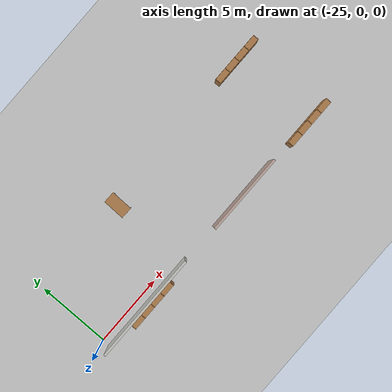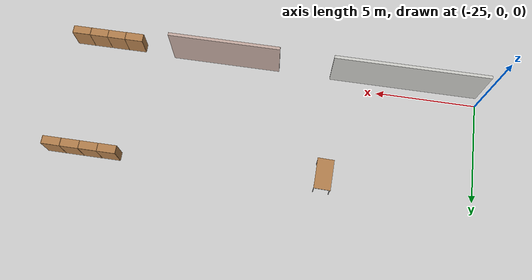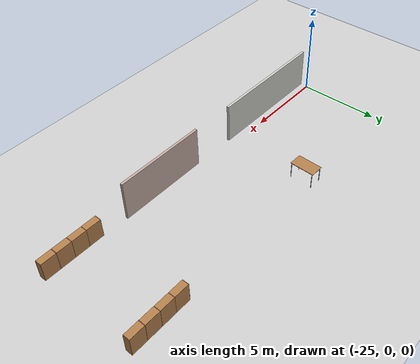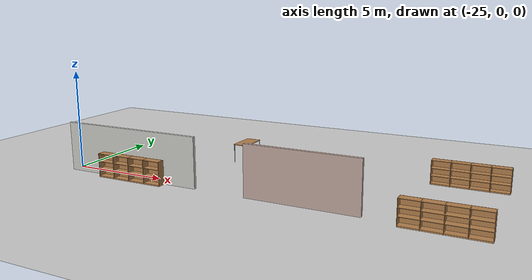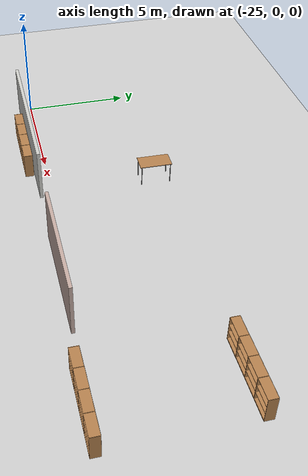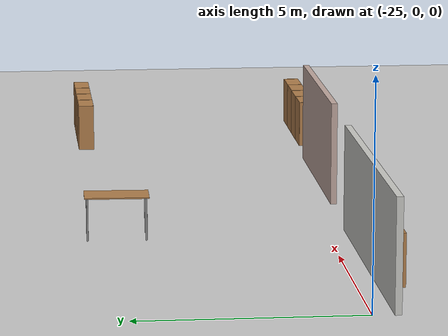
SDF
<sdf version="1.6">
 <world name="default">
  <model name="ground_plane">
   <static>1</static>
   <link name="link">
    <collision name="collision">
     <geometry><plane><normal>0 0 1</normal><size>100 100</size></plane></geometry>
     <surface><friction><ode><mu>100</mu><mu2>50</mu2></ode></friction></surface>
    </collision>
    <visual name="visual">
     <cast_shadows>0</cast_shadows>
     <geometry><plane><normal>0 0 1</normal><size>100 100</size></plane></geometry>
     <material>
      <script><uri>file://media/materials/scripts/gazebo.material</uri><name>Gazebo/Grey</name></script>
     </material>
    </visual>
   </link>
  </model>
  <model name="floor">
   <link name="Wall_211">
    <pose>-13.4181 0.683546 0 0 -0 0</pose>
    <visual name="Wall_211_Visual">
     <pose>0 0 1.25 0 -0 0</pose>
     <geometry><box><size>5.5 0.15 2.5</size></box></geometry>
     <material>
      <script><uri>file://media/materials/scripts/gazebo.material</uri><name>Gazebo/Grey</name></script>
      <ambient>0.760784 0.662745 0.627451 1</ambient>
     </material>
     <meta><layer>0</layer></meta>
    </visual>
    <collision name="Wall_211_Collision">
     <pose>0 0 1.25 0 -0 0</pose>
     <geometry><box><size>5.5 0.15 2.5</size></box></geometry>
     <surface>
      <friction>
       <ode><mu>1</mu><mu2>1</mu2><fdir1>0 0 0</fdir1><slip1>0</slip1><slip2>0</slip2></ode>
       <torsional>
        <coefficient>1</coefficient>
        <patch_radius>0</patch_radius>
        <surface_radius>0</surface_radius>
        <use_patch_radius>1</use_patch_radius>
        <ode><slip>0</slip></ode>
       </torsional>
      </friction>
      <bounce><restitution_coefficient>0</restitution_coefficient><threshold>1e+06</threshold></bounce>
      <contact>
       <collide_without_contact>0</collide_without_contact>
       <collide_without_contact_bitmask>1</collide_without_contact_bitmask>
       <collide_bitmask>1</collide_bitmask>
       <ode>
        <soft_cfm>0</soft_cfm>
        <soft_erp>0.2</soft_erp>
        <kp>1e+13</kp>
        <kd>1</kd>
        <max_vel>0.01</max_vel>
        <min_depth>0</min_depth>
       </ode>
       <bullet>
        <split_impulse>1</split_impulse>
        <split_impulse_penetration_threshold>-0.01</split_impulse_penetration_threshold>
        <soft_cfm>0</soft_cfm>
        <soft_erp>0.2</soft_erp>
        <kp>1e+13</kp>
        <kd>1</kd>
       </bullet>
      </contact>
     </surface>
    </collision>
   </link>
   <link name="Wall_35">
    <pose>-22.5589 0.737728 0 0 -0 0</pose>
    <visual name="Wall_35_Visual">
     <pose>0 0 1.25 0 -0 0</pose>
     <geometry><box><size>7.5 0.15 2.5</size></box></geometry>
     <material>
      <script><uri>file://media/materials/scripts/gazebo.material</uri><name>Gazebo/CeilingTiled</name></script>
      <ambient>0.760784 0.662745 0.627451 1</ambient>
     </material>
     <meta><layer>0</layer></meta>
    </visual>
    <collision name="Wall_35_Collision">
     <pose>0 0 1.25 0 -0 0</pose>
     <geometry><box><size>7.5 0.15 2.5</size></box></geometry>
     <surface>
      <friction>
       <ode><mu>1</mu><mu2>1</mu2><fdir1>0 0 0</fdir1><slip1>0</slip1><slip2>0</slip2></ode>
       <torsional>
        <coefficient>1</coefficient>
        <patch_radius>0</patch_radius>
        <surface_radius>0</surface_radius>
        <use_patch_radius>1</use_patch_radius>
        <ode><slip>0</slip></ode>
       </torsional>
      </friction>
      <bounce><restitution_coefficient>0</restitution_coefficient><threshold>1e+06</threshold></bounce>
      <contact>
       <collide_without_contact>0</collide_without_contact>
       <collide_without_contact_bitmask>1</collide_without_contact_bitmask>
       <collide_bitmask>1</collide_bitmask>
       <ode>
        <soft_cfm>0</soft_cfm>
        <soft_erp>0.2</soft_erp>
        <kp>1e+13</kp>
        <kd>1</kd>
        <max_vel>0.01</max_vel>
        <min_depth>0</min_depth>
       </ode>
       <bullet>
        <split_impulse>1</split_impulse>
        <split_impulse_penetration_threshold>-0.01</split_impulse_penetration_threshold>
        <soft_cfm>0</soft_cfm>
        <soft_erp>0.2</soft_erp>
        <kp>1e+13</kp>
        <kd>1</kd>
       </bullet>
      </contact>
     </surface>
    </collision>
   </link>
   <model name="Bookself-4_0_clone">
    <model name="Bookself-3">
     <model name="bookshelf_0">
      <static>1</static>
      <link name="link">
       <inertial><mass>1</mass></inertial>
       <collision name="back">
        <pose>0 0.005 0.6 0 -0 0</pose>
        <geometry><box><size>0.9 0.01 1.2</size></box></geometry>
       </collision>
       <visual name="visual1">
        <pose>0 0.005 0.6 0 -0 0</pose>
        <geometry><box><size>0.9 0.01 1.2</size></box></geometry>
        <material>
         <script><uri>file://media/materials/scripts/gazebo.material</uri><name>Gazebo/Wood</name></script>
        </material>
       </visual>
       <collision name="left_side">
        <pose>0.45 -0.195 0.6 0 -0 0</pose>
        <geometry><box><size>0.02 0.4 1.2</size></box></geometry>
       </collision>
       <visual name="visual2">
        <pose>0.45 -0.195 0.6 0 -0 0</pose>
        <geometry><box><size>0.02 0.4 1.2</size></box></geometry>
        <material>
         <script><uri>file://media/materials/scripts/gazebo.material</uri><name>Gazebo/Wood</name></script>
        </material>
       </visual>
       <collision name="right_side">
        <pose>-0.45 -0.195 0.6 0 -0 0</pose>
        <geometry><box><size>0.02 0.4 1.2</size></box></geometry>
       </collision>
       <visual name="visual3">
        <pose>-0.45 -0.195 0.6 0 -0 0</pose>
        <geometry><box><size>0.02 0.4 1.2</size></box></geometry>
        <material>
         <script><uri>file://media/materials/scripts/gazebo.material</uri><name>Gazebo/Wood</name></script>
        </material>
       </visual>
       <collision name="bottom">
        <pose>0 -0.195 0.03 0 -0 0</pose>
        <geometry><box><size>0.88 0.4 0.06</size></box></geometry>
       </collision>
       <visual name="visual4">
        <pose>0 -0.195 0.03 0 -0 0</pose>
        <geometry><box><size>0.88 0.4 0.06</size></box></geometry>
        <material>
         <script><uri>file://media/materials/scripts/gazebo.material</uri><name>Gazebo/Wood</name></script>
        </material>
       </visual>
       <collision name="top">
        <pose>0 -0.195 1.19 0 -0 0</pose>
        <geometry><box><size>0.88 0.4 0.02</size></box></geometry>
       </collision>
       <visual name="visual5">
        <pose>0 -0.195 1.19 0 -0 0</pose>
        <geometry><box><size>0.88 0.4 0.02</size></box></geometry>
        <material>
         <script><uri>file://media/materials/scripts/gazebo.material</uri><name>Gazebo/Wood</name></script>
        </material>
       </visual>
       <collision name="low_shelf">
        <pose>0 -0.195 0.43 0 -0 0</pose>
        <geometry><box><size>0.88 0.4 0.02</size></box></geometry>
       </collision>
       <visual name="visual6">
        <pose>0 -0.195 0.43 0 -0 0</pose>
        <geometry><box><size>0.88 0.4 0.02</size></box></geometry>
        <material>
         <script><uri>file://media/materials/scripts/gazebo.material</uri><name>Gazebo/Wood</name></script>
        </material>
       </visual>
       <collision name="high_shelf">
        <pose>0 -0.195 0.8 0 -0 0</pose>
        <geometry><box><size>0.88 0.4 0.02</size></box></geometry>
       </collision>
       <visual name="visual7">
        <pose>0 -0.195 0.8 0 -0 0</pose>
        <geometry><box><size>0.88 0.4 0.02</size></box></geometry>
        <material>
         <script><uri>file://media/materials/scripts/gazebo.material</uri><name>Gazebo/Wood</name></script>
        </material>
       </visual>
      </link>
      <pose>-0.903039 0 0 0 -0 0</pose>
     </model>
     <model name="bookshelf_1">
      <static>1</static>
      <link name="link">
       <inertial><mass>1</mass></inertial>
       <collision name="back">
        <pose>0 0.005 0.6 0 -0 0</pose>
        <geometry><box><size>0.9 0.01 1.2</size></box></geometry>
       </collision>
       <visual name="visual1">
        <pose>0 0.005 0.6 0 -0 0</pose>
        <geometry><box><size>0.9 0.01 1.2</size></box></geometry>
        <material>
         <script><uri>file://media/materials/scripts/gazebo.material</uri><name>Gazebo/Wood</name></script>
        </material>
       </visual>
       <collision name="left_side">
        <pose>0.45 -0.195 0.6 0 -0 0</pose>
        <geometry><box><size>0.02 0.4 1.2</size></box></geometry>
       </collision>
       <visual name="visual2">
        <pose>0.45 -0.195 0.6 0 -0 0</pose>
        <geometry><box><size>0.02 0.4 1.2</size></box></geometry>
        <material>
         <script><uri>file://media/materials/scripts/gazebo.material</uri><name>Gazebo/Wood</name></script>
        </material>
       </visual>
       <collision name="right_side">
        <pose>-0.45 -0.195 0.6 0 -0 0</pose>
        <geometry><box><size>0.02 0.4 1.2</size></box></geometry>
       </collision>
       <visual name="visual3">
        <pose>-0.45 -0.195 0.6 0 -0 0</pose>
        <geometry><box><size>0.02 0.4 1.2</size></box></geometry>
        <material>
         <script><uri>file://media/materials/scripts/gazebo.material</uri><name>Gazebo/Wood</name></script>
        </material>
       </visual>
       <collision name="bottom">
        <pose>0 -0.195 0.03 0 -0 0</pose>
        <geometry><box><size>0.88 0.4 0.06</size></box></geometry>
       </collision>
       <visual name="visual4">
        <pose>0 -0.195 0.03 0 -0 0</pose>
        <geometry><box><size>0.88 0.4 0.06</size></box></geometry>
        <material>
         <script><uri>file://media/materials/scripts/gazebo.material</uri><name>Gazebo/Wood</name></script>
        </material>
       </visual>
       <collision name="top">
        <pose>0 -0.195 1.19 0 -0 0</pose>
        <geometry><box><size>0.88 0.4 0.02</size></box></geometry>
       </collision>
       <visual name="visual5">
        <pose>0 -0.195 1.19 0 -0 0</pose>
        <geometry><box><size>0.88 0.4 0.02</size></box></geometry>
        <material>
         <script><uri>file://media/materials/scripts/gazebo.material</uri><name>Gazebo/Wood</name></script>
        </material>
       </visual>
       <collision name="low_shelf">
        <pose>0 -0.195 0.43 0 -0 0</pose>
        <geometry><box><size>0.88 0.4 0.02</size></box></geometry>
       </collision>
       <visual name="visual6">
        <pose>0 -0.195 0.43 0 -0 0</pose>
        <geometry><box><size>0.88 0.4 0.02</size></box></geometry>
        <material>
         <script><uri>file://media/materials/scripts/gazebo.material</uri><name>Gazebo/Wood</name></script>
        </material>
       </visual>
       <collision name="high_shelf">
        <pose>0 -0.195 0.8 0 -0 0</pose>
        <geometry><box><size>0.88 0.4 0.02</size></box></geometry>
       </collision>
       <visual name="visual7">
        <pose>0 -0.195 0.8 0 -0 0</pose>
        <geometry><box><size>0.88 0.4 0.02</size></box></geometry>
        <material>
         <script><uri>file://media/materials/scripts/gazebo.material</uri><name>Gazebo/Wood</name></script>
        </material>
       </visual>
      </link>
      <pose>0.000535 0 0 0 -0 0</pose>
     </model>
     <model name="bookshelf_1_clone">
      <static>1</static>
      <link name="link">
       <inertial><mass>1</mass></inertial>
       <collision name="back">
        <pose>0 0.005 0.6 0 -0 0</pose>
        <geometry><box><size>0.9 0.01 1.2</size></box></geometry>
       </collision>
       <visual name="visual1">
        <pose>0 0.005 0.6 0 -0 0</pose>
        <geometry><box><size>0.9 0.01 1.2</size></box></geometry>
        <material>
         <script><uri>file://media/materials/scripts/gazebo.material</uri><name>Gazebo/Wood</name></script>
        </material>
       </visual>
       <collision name="left_side">
        <pose>0.45 -0.195 0.6 0 -0 0</pose>
        <geometry><box><size>0.02 0.4 1.2</size></box></geometry>
       </collision>
       <visual name="visual2">
        <pose>0.45 -0.195 0.6 0 -0 0</pose>
        <geometry><box><size>0.02 0.4 1.2</size></box></geometry>
        <material>
         <script><uri>file://media/materials/scripts/gazebo.material</uri><name>Gazebo/Wood</name></script>
        </material>
       </visual>
       <collision name="right_side">
        <pose>-0.45 -0.195 0.6 0 -0 0</pose>
        <geometry><box><size>0.02 0.4 1.2</size></box></geometry>
       </collision>
       <visual name="visual3">
        <pose>-0.45 -0.195 0.6 0 -0 0</pose>
        <geometry><box><size>0.02 0.4 1.2</size></box></geometry>
        <material>
         <script><uri>file://media/materials/scripts/gazebo.material</uri><name>Gazebo/Wood</name></script>
        </material>
       </visual>
       <collision name="bottom">
        <pose>0 -0.195 0.03 0 -0 0</pose>
        <geometry><box><size>0.88 0.4 0.06</size></box></geometry>
       </collision>
       <visual name="visual4">
        <pose>0 -0.195 0.03 0 -0 0</pose>
        <geometry><box><size>0.88 0.4 0.06</size></box></geometry>
        <material>
         <script><uri>file://media/materials/scripts/gazebo.material</uri><name>Gazebo/Wood</name></script>
        </material>
       </visual>
       <collision name="top">
        <pose>0 -0.195 1.19 0 -0 0</pose>
        <geometry><box><size>0.88 0.4 0.02</size></box></geometry>
       </collision>
       <visual name="visual5">
        <pose>0 -0.195 1.19 0 -0 0</pose>
        <geometry><box><size>0.88 0.4 0.02</size></box></geometry>
        <material>
         <script><uri>file://media/materials/scripts/gazebo.material</uri><name>Gazebo/Wood</name></script>
        </material>
       </visual>
       <collision name="low_shelf">
        <pose>0 -0.195 0.43 0 -0 0</pose>
        <geometry><box><size>0.88 0.4 0.02</size></box></geometry>
       </collision>
       <visual name="visual6">
        <pose>0 -0.195 0.43 0 -0 0</pose>
        <geometry><box><size>0.88 0.4 0.02</size></box></geometry>
        <material>
         <script><uri>file://media/materials/scripts/gazebo.material</uri><name>Gazebo/Wood</name></script>
        </material>
       </visual>
       <collision name="high_shelf">
        <pose>0 -0.195 0.8 0 -0 0</pose>
        <geometry><box><size>0.88 0.4 0.02</size></box></geometry>
       </collision>
       <visual name="visual7">
        <pose>0 -0.195 0.8 0 -0 0</pose>
        <geometry><box><size>0.88 0.4 0.02</size></box></geometry>
        <material>
         <script><uri>file://media/materials/scripts/gazebo.material</uri><name>Gazebo/Wood</name></script>
        </material>
       </visual>
      </link>
      <pose>0.902502 0 0 0 -0 0</pose>
     </model>
     <static>1</static>
     <pose>-0.906894 3e-05 0 0 -0 0</pose>
    </model>
    <model name="bookshelf">
     <static>1</static>
     <link name="link">
      <inertial><mass>1</mass></inertial>
      <collision name="back">
       <pose>0 0.005 0.6 0 -0 0</pose>
       <geometry><box><size>0.9 0.01 1.2</size></box></geometry>
      </collision>
      <visual name="visual1">
       <pose>0 0.005 0.6 0 -0 0</pose>
       <geometry><box><size>0.9 0.01 1.2</size></box></geometry>
       <material>
        <script><uri>file://media/materials/scripts/gazebo.material</uri><name>Gazebo/Wood</name></script>
       </material>
      </visual>
      <collision name="left_side">
       <pose>0.45 -0.195 0.6 0 -0 0</pose>
       <geometry><box><size>0.02 0.4 1.2</size></box></geometry>
      </collision>
      <visual name="visual2">
       <pose>0.45 -0.195 0.6 0 -0 0</pose>
       <geometry><box><size>0.02 0.4 1.2</size></box></geometry>
       <material>
        <script><uri>file://media/materials/scripts/gazebo.material</uri><name>Gazebo/Wood</name></script>
       </material>
      </visual>
      <collision name="right_side">
       <pose>-0.45 -0.195 0.6 0 -0 0</pose>
       <geometry><box><size>0.02 0.4 1.2</size></box></geometry>
      </collision>
      <visual name="visual3">
       <pose>-0.45 -0.195 0.6 0 -0 0</pose>
       <geometry><box><size>0.02 0.4 1.2</size></box></geometry>
       <material>
        <script><uri>file://media/materials/scripts/gazebo.material</uri><name>Gazebo/Wood</name></script>
       </material>
      </visual>
      <collision name="bottom">
       <pose>0 -0.195 0.03 0 -0 0</pose>
       <geometry><box><size>0.88 0.4 0.06</size></box></geometry>
      </collision>
      <visual name="visual4">
       <pose>0 -0.195 0.03 0 -0 0</pose>
       <geometry><box><size>0.88 0.4 0.06</size></box></geometry>
       <material>
        <script><uri>file://media/materials/scripts/gazebo.material</uri><name>Gazebo/Wood</name></script>
       </material>
      </visual>
      <collision name="top">
       <pose>0 -0.195 1.19 0 -0 0</pose>
       <geometry><box><size>0.88 0.4 0.02</size></box></geometry>
      </collision>
      <visual name="visual5">
       <pose>0 -0.195 1.19 0 -0 0</pose>
       <geometry><box><size>0.88 0.4 0.02</size></box></geometry>
       <material>
        <script><uri>file://media/materials/scripts/gazebo.material</uri><name>Gazebo/Wood</name></script>
       </material>
      </visual>
      <collision name="low_shelf">
       <pose>0 -0.195 0.43 0 -0 0</pose>
       <geometry><box><size>0.88 0.4 0.02</size></box></geometry>
      </collision>
      <visual name="visual6">
       <pose>0 -0.195 0.43 0 -0 0</pose>
       <geometry><box><size>0.88 0.4 0.02</size></box></geometry>
       <material>
        <script><uri>file://media/materials/scripts/gazebo.material</uri><name>Gazebo/Wood</name></script>
       </material>
      </visual>
      <collision name="high_shelf">
       <pose>0 -0.195 0.8 0 -0 0</pose>
       <geometry><box><size>0.88 0.4 0.02</size></box></geometry>
      </collision>
      <visual name="visual7">
       <pose>0 -0.195 0.8 0 -0 0</pose>
       <geometry><box><size>0.88 0.4 0.02</size></box></geometry>
       <material>
        <script><uri>file://media/materials/scripts/gazebo.material</uri><name>Gazebo/Wood</name></script>
       </material>
      </visual>
     </link>
     <pose>0.906808 3e-05 0 0 -0 0</pose>
    </model>
    <static>0</static>
    <pose>-21.8804 0.620908 0 0 -0 0</pose>
   </model>
   <static>1</static>
   <pose>1.26361 -1.27025 0 0 -0 0</pose>
  </model>
  <model name="Bookshelf-4_clone_0">
   <model name="bookshelf">
    <static>1</static>
    <link name="link">
     <inertial><mass>1</mass></inertial>
     <collision name="back">
      <pose>0 0.005 0.6 0 -0 0</pose>
      <geometry><box><size>0.9 0.01 1.2</size></box></geometry>
     </collision>
     <visual name="visual1">
      <pose>0 0.005 0.6 0 -0 0</pose>
      <geometry><box><size>0.9 0.01 1.2</size></box></geometry>
      <material>
       <script><uri>file://media/materials/scripts/gazebo.material</uri><name>Gazebo/Wood</name></script>
      </material>
     </visual>
     <collision name="left_side">
      <pose>0.45 -0.195 0.6 0 -0 0</pose>
      <geometry><box><size>0.02 0.4 1.2</size></box></geometry>
     </collision>
     <visual name="visual2">
      <pose>0.45 -0.195 0.6 0 -0 0</pose>
      <geometry><box><size>0.02 0.4 1.2</size></box></geometry>
      <material>
       <script><uri>file://media/materials/scripts/gazebo.material</uri><name>Gazebo/Wood</name></script>
      </material>
     </visual>
     <collision name="right_side">
      <pose>-0.45 -0.195 0.6 0 -0 0</pose>
      <geometry><box><size>0.02 0.4 1.2</size></box></geometry>
     </collision>
     <visual name="visual3">
      <pose>-0.45 -0.195 0.6 0 -0 0</pose>
      <geometry><box><size>0.02 0.4 1.2</size></box></geometry>
      <material>
       <script><uri>file://media/materials/scripts/gazebo.material</uri><name>Gazebo/Wood</name></script>
      </material>
     </visual>
     <collision name="bottom">
      <pose>0 -0.195 0.03 0 -0 0</pose>
      <geometry><box><size>0.88 0.4 0.06</size></box></geometry>
     </collision>
     <visual name="visual4">
      <pose>0 -0.195 0.03 0 -0 0</pose>
      <geometry><box><size>0.88 0.4 0.06</size></box></geometry>
      <material>
       <script><uri>file://media/materials/scripts/gazebo.material</uri><name>Gazebo/Wood</name></script>
      </material>
     </visual>
     <collision name="top">
      <pose>0 -0.195 1.19 0 -0 0</pose>
      <geometry><box><size>0.88 0.4 0.02</size></box></geometry>
     </collision>
     <visual name="visual5">
      <pose>0 -0.195 1.19 0 -0 0</pose>
      <geometry><box><size>0.88 0.4 0.02</size></box></geometry>
      <material>
       <script><uri>file://media/materials/scripts/gazebo.material</uri><name>Gazebo/Wood</name></script>
      </material>
     </visual>
     <collision name="low_shelf">
      <pose>0 -0.195 0.43 0 -0 0</pose>
      <geometry><box><size>0.88 0.4 0.02</size></box></geometry>
     </collision>
     <visual name="visual6">
      <pose>0 -0.195 0.43 0 -0 0</pose>
      <geometry><box><size>0.88 0.4 0.02</size></box></geometry>
      <material>
       <script><uri>file://media/materials/scripts/gazebo.material</uri><name>Gazebo/Wood</name></script>
      </material>
     </visual>
     <collision name="high_shelf">
      <pose>0 -0.195 0.8 0 -0 0</pose>
      <geometry><box><size>0.88 0.4 0.02</size></box></geometry>
     </collision>
     <visual name="visual7">
      <pose>0 -0.195 0.8 0 -0 0</pose>
      <geometry><box><size>0.88 0.4 0.02</size></box></geometry>
      <material>
       <script><uri>file://media/materials/scripts/gazebo.material</uri><name>Gazebo/Wood</name></script>
      </material>
     </visual>
    </link>
    <pose>-1.35671 -0.002097 0 0 -0 0</pose>
   </model>
   <model name="bookshelf_0">
    <static>1</static>
    <link name="link">
     <inertial><mass>1</mass></inertial>
     <collision name="back">
      <pose>0 0.005 0.6 0 -0 0</pose>
      <geometry><box><size>0.9 0.01 1.2</size></box></geometry>
     </collision>
     <visual name="visual1">
      <pose>0 0.005 0.6 0 -0 0</pose>
      <geometry><box><size>0.9 0.01 1.2</size></box></geometry>
      <material>
       <script><uri>file://media/materials/scripts/gazebo.material</uri><name>Gazebo/Wood</name></script>
      </material>
     </visual>
     <collision name="left_side">
      <pose>0.45 -0.195 0.6 0 -0 0</pose>
      <geometry><box><size>0.02 0.4 1.2</size></box></geometry>
     </collision>
     <visual name="visual2">
      <pose>0.45 -0.195 0.6 0 -0 0</pose>
      <geometry><box><size>0.02 0.4 1.2</size></box></geometry>
      <material>
       <script><uri>file://media/materials/scripts/gazebo.material</uri><name>Gazebo/Wood</name></script>
      </material>
     </visual>
     <collision name="right_side">
      <pose>-0.45 -0.195 0.6 0 -0 0</pose>
      <geometry><box><size>0.02 0.4 1.2</size></box></geometry>
     </collision>
     <visual name="visual3">
      <pose>-0.45 -0.195 0.6 0 -0 0</pose>
      <geometry><box><size>0.02 0.4 1.2</size></box></geometry>
      <material>
       <script><uri>file://media/materials/scripts/gazebo.material</uri><name>Gazebo/Wood</name></script>
      </material>
     </visual>
     <collision name="bottom">
      <pose>0 -0.195 0.03 0 -0 0</pose>
      <geometry><box><size>0.88 0.4 0.06</size></box></geometry>
     </collision>
     <visual name="visual4">
      <pose>0 -0.195 0.03 0 -0 0</pose>
      <geometry><box><size>0.88 0.4 0.06</size></box></geometry>
      <material>
       <script><uri>file://media/materials/scripts/gazebo.material</uri><name>Gazebo/Wood</name></script>
      </material>
     </visual>
     <collision name="top">
      <pose>0 -0.195 1.19 0 -0 0</pose>
      <geometry><box><size>0.88 0.4 0.02</size></box></geometry>
     </collision>
     <visual name="visual5">
      <pose>0 -0.195 1.19 0 -0 0</pose>
      <geometry><box><size>0.88 0.4 0.02</size></box></geometry>
      <material>
       <script><uri>file://media/materials/scripts/gazebo.material</uri><name>Gazebo/Wood</name></script>
      </material>
     </visual>
     <collision name="low_shelf">
      <pose>0 -0.195 0.43 0 -0 0</pose>
      <geometry><box><size>0.88 0.4 0.02</size></box></geometry>
     </collision>
     <visual name="visual6">
      <pose>0 -0.195 0.43 0 -0 0</pose>
      <geometry><box><size>0.88 0.4 0.02</size></box></geometry>
      <material>
       <script><uri>file://media/materials/scripts/gazebo.material</uri><name>Gazebo/Wood</name></script>
      </material>
     </visual>
     <collision name="high_shelf">
      <pose>0 -0.195 0.8 0 -0 0</pose>
      <geometry><box><size>0.88 0.4 0.02</size></box></geometry>
     </collision>
     <visual name="visual7">
      <pose>0 -0.195 0.8 0 -0 0</pose>
      <geometry><box><size>0.88 0.4 0.02</size></box></geometry>
      <material>
       <script><uri>file://media/materials/scripts/gazebo.material</uri><name>Gazebo/Wood</name></script>
      </material>
     </visual>
    </link>
    <pose>-0.452974 0.001386 0 0 -0 0</pose>
   </model>
   <model name="bookshelf_1">
    <static>1</static>
    <link name="link">
     <inertial><mass>1</mass></inertial>
     <collision name="back">
      <pose>0 0.005 0.6 0 -0 0</pose>
      <geometry><box><size>0.9 0.01 1.2</size></box></geometry>
     </collision>
     <visual name="visual1">
      <pose>0 0.005 0.6 0 -0 0</pose>
      <geometry><box><size>0.9 0.01 1.2</size></box></geometry>
      <material>
       <script><uri>file://media/materials/scripts/gazebo.material</uri><name>Gazebo/Wood</name></script>
      </material>
     </visual>
     <collision name="left_side">
      <pose>0.45 -0.195 0.6 0 -0 0</pose>
      <geometry><box><size>0.02 0.4 1.2</size></box></geometry>
     </collision>
     <visual name="visual2">
      <pose>0.45 -0.195 0.6 0 -0 0</pose>
      <geometry><box><size>0.02 0.4 1.2</size></box></geometry>
      <material>
       <script><uri>file://media/materials/scripts/gazebo.material</uri><name>Gazebo/Wood</name></script>
      </material>
     </visual>
     <collision name="right_side">
      <pose>-0.45 -0.195 0.6 0 -0 0</pose>
      <geometry><box><size>0.02 0.4 1.2</size></box></geometry>
     </collision>
     <visual name="visual3">
      <pose>-0.45 -0.195 0.6 0 -0 0</pose>
      <geometry><box><size>0.02 0.4 1.2</size></box></geometry>
      <material>
       <script><uri>file://media/materials/scripts/gazebo.material</uri><name>Gazebo/Wood</name></script>
      </material>
     </visual>
     <collision name="bottom">
      <pose>0 -0.195 0.03 0 -0 0</pose>
      <geometry><box><size>0.88 0.4 0.06</size></box></geometry>
     </collision>
     <visual name="visual4">
      <pose>0 -0.195 0.03 0 -0 0</pose>
      <geometry><box><size>0.88 0.4 0.06</size></box></geometry>
      <material>
       <script><uri>file://media/materials/scripts/gazebo.material</uri><name>Gazebo/Wood</name></script>
      </material>
     </visual>
     <collision name="top">
      <pose>0 -0.195 1.19 0 -0 0</pose>
      <geometry><box><size>0.88 0.4 0.02</size></box></geometry>
     </collision>
     <visual name="visual5">
      <pose>0 -0.195 1.19 0 -0 0</pose>
      <geometry><box><size>0.88 0.4 0.02</size></box></geometry>
      <material>
       <script><uri>file://media/materials/scripts/gazebo.material</uri><name>Gazebo/Wood</name></script>
      </material>
     </visual>
     <collision name="low_shelf">
      <pose>0 -0.195 0.43 0 -0 0</pose>
      <geometry><box><size>0.88 0.4 0.02</size></box></geometry>
     </collision>
     <visual name="visual6">
      <pose>0 -0.195 0.43 0 -0 0</pose>
      <geometry><box><size>0.88 0.4 0.02</size></box></geometry>
      <material>
       <script><uri>file://media/materials/scripts/gazebo.material</uri><name>Gazebo/Wood</name></script>
      </material>
     </visual>
     <collision name="high_shelf">
      <pose>0 -0.195 0.8 0 -0 0</pose>
      <geometry><box><size>0.88 0.4 0.02</size></box></geometry>
     </collision>
     <visual name="visual7">
      <pose>0 -0.195 0.8 0 -0 0</pose>
      <geometry><box><size>0.88 0.4 0.02</size></box></geometry>
      <material>
       <script><uri>file://media/materials/scripts/gazebo.material</uri><name>Gazebo/Wood</name></script>
      </material>
     </visual>
    </link>
    <pose>0.450456 0.000733 0 0 -0 0</pose>
   </model>
   <model name="bookshelf_2">
    <static>1</static>
    <link name="link">
     <inertial><mass>1</mass></inertial>
     <collision name="back">
      <pose>0 0.005 0.6 0 -0 0</pose>
      <geometry><box><size>0.9 0.01 1.2</size></box></geometry>
     </collision>
     <visual name="visual1">
      <pose>0 0.005 0.6 0 -0 0</pose>
      <geometry><box><size>0.9 0.01 1.2</size></box></geometry>
      <material>
       <script><uri>file://media/materials/scripts/gazebo.material</uri><name>Gazebo/Wood</name></script>
      </material>
     </visual>
     <collision name="left_side">
      <pose>0.45 -0.195 0.6 0 -0 0</pose>
      <geometry><box><size>0.02 0.4 1.2</size></box></geometry>
     </collision>
     <visual name="visual2">
      <pose>0.45 -0.195 0.6 0 -0 0</pose>
      <geometry><box><size>0.02 0.4 1.2</size></box></geometry>
      <material>
       <script><uri>file://media/materials/scripts/gazebo.material</uri><name>Gazebo/Wood</name></script>
      </material>
     </visual>
     <collision name="right_side">
      <pose>-0.45 -0.195 0.6 0 -0 0</pose>
      <geometry><box><size>0.02 0.4 1.2</size></box></geometry>
     </collision>
     <visual name="visual3">
      <pose>-0.45 -0.195 0.6 0 -0 0</pose>
      <geometry><box><size>0.02 0.4 1.2</size></box></geometry>
      <material>
       <script><uri>file://media/materials/scripts/gazebo.material</uri><name>Gazebo/Wood</name></script>
      </material>
     </visual>
     <collision name="bottom">
      <pose>0 -0.195 0.03 0 -0 0</pose>
      <geometry><box><size>0.88 0.4 0.06</size></box></geometry>
     </collision>
     <visual name="visual4">
      <pose>0 -0.195 0.03 0 -0 0</pose>
      <geometry><box><size>0.88 0.4 0.06</size></box></geometry>
      <material>
       <script><uri>file://media/materials/scripts/gazebo.material</uri><name>Gazebo/Wood</name></script>
      </material>
     </visual>
     <collision name="top">
      <pose>0 -0.195 1.19 0 -0 0</pose>
      <geometry><box><size>0.88 0.4 0.02</size></box></geometry>
     </collision>
     <visual name="visual5">
      <pose>0 -0.195 1.19 0 -0 0</pose>
      <geometry><box><size>0.88 0.4 0.02</size></box></geometry>
      <material>
       <script><uri>file://media/materials/scripts/gazebo.material</uri><name>Gazebo/Wood</name></script>
      </material>
     </visual>
     <collision name="low_shelf">
      <pose>0 -0.195 0.43 0 -0 0</pose>
      <geometry><box><size>0.88 0.4 0.02</size></box></geometry>
     </collision>
     <visual name="visual6">
      <pose>0 -0.195 0.43 0 -0 0</pose>
      <geometry><box><size>0.88 0.4 0.02</size></box></geometry>
      <material>
       <script><uri>file://media/materials/scripts/gazebo.material</uri><name>Gazebo/Wood</name></script>
      </material>
     </visual>
     <collision name="high_shelf">
      <pose>0 -0.195 0.8 0 -0 0</pose>
      <geometry><box><size>0.88 0.4 0.02</size></box></geometry>
     </collision>
     <visual name="visual7">
      <pose>0 -0.195 0.8 0 -0 0</pose>
      <geometry><box><size>0.88 0.4 0.02</size></box></geometry>
      <material>
       <script><uri>file://media/materials/scripts/gazebo.material</uri><name>Gazebo/Wood</name></script>
      </material>
     </visual>
    </link>
    <pose>1.35922 -1.7e-05 0 0 -0 0</pose>
   </model>
   <static>0</static>
   <pose>-6.04191 -0.621397 0 0 -0 0</pose>
  </model>
  <model name="Bookshelf-4_clone_6_clone_1">
   <model name="bookshelf">
    <static>1</static>
    <link name="link">
     <inertial><mass>1</mass></inertial>
     <collision name="back">
      <pose>0 0.005 0.6 0 -0 0</pose>
      <geometry><box><size>0.9 0.01 1.2</size></box></geometry>
     </collision>
     <visual name="visual1">
      <pose>0 0.005 0.6 0 -0 0</pose>
      <geometry><box><size>0.9 0.01 1.2</size></box></geometry>
      <material>
       <script><uri>file://media/materials/scripts/gazebo.material</uri><name>Gazebo/Wood</name></script>
      </material>
     </visual>
     <collision name="left_side">
      <pose>0.45 -0.195 0.6 0 -0 0</pose>
      <geometry><box><size>0.02 0.4 1.2</size></box></geometry>
     </collision>
     <visual name="visual2">
      <pose>0.45 -0.195 0.6 0 -0 0</pose>
      <geometry><box><size>0.02 0.4 1.2</size></box></geometry>
      <material>
       <script><uri>file://media/materials/scripts/gazebo.material</uri><name>Gazebo/Wood</name></script>
      </material>
     </visual>
     <collision name="right_side">
      <pose>-0.45 -0.195 0.6 0 -0 0</pose>
      <geometry><box><size>0.02 0.4 1.2</size></box></geometry>
     </collision>
     <visual name="visual3">
      <pose>-0.45 -0.195 0.6 0 -0 0</pose>
      <geometry><box><size>0.02 0.4 1.2</size></box></geometry>
      <material>
       <script><uri>file://media/materials/scripts/gazebo.material</uri><name>Gazebo/Wood</name></script>
      </material>
     </visual>
     <collision name="bottom">
      <pose>0 -0.195 0.03 0 -0 0</pose>
      <geometry><box><size>0.88 0.4 0.06</size></box></geometry>
     </collision>
     <visual name="visual4">
      <pose>0 -0.195 0.03 0 -0 0</pose>
      <geometry><box><size>0.88 0.4 0.06</size></box></geometry>
      <material>
       <script><uri>file://media/materials/scripts/gazebo.material</uri><name>Gazebo/Wood</name></script>
      </material>
     </visual>
     <collision name="top">
      <pose>0 -0.195 1.19 0 -0 0</pose>
      <geometry><box><size>0.88 0.4 0.02</size></box></geometry>
     </collision>
     <visual name="visual5">
      <pose>0 -0.195 1.19 0 -0 0</pose>
      <geometry><box><size>0.88 0.4 0.02</size></box></geometry>
      <material>
       <script><uri>file://media/materials/scripts/gazebo.material</uri><name>Gazebo/Wood</name></script>
      </material>
     </visual>
     <collision name="low_shelf">
      <pose>0 -0.195 0.43 0 -0 0</pose>
      <geometry><box><size>0.88 0.4 0.02</size></box></geometry>
     </collision>
     <visual name="visual6">
      <pose>0 -0.195 0.43 0 -0 0</pose>
      <geometry><box><size>0.88 0.4 0.02</size></box></geometry>
      <material>
       <script><uri>file://media/materials/scripts/gazebo.material</uri><name>Gazebo/Wood</name></script>
      </material>
     </visual>
     <collision name="high_shelf">
      <pose>0 -0.195 0.8 0 -0 0</pose>
      <geometry><box><size>0.88 0.4 0.02</size></box></geometry>
     </collision>
     <visual name="visual7">
      <pose>0 -0.195 0.8 0 -0 0</pose>
      <geometry><box><size>0.88 0.4 0.02</size></box></geometry>
      <material>
       <script><uri>file://media/materials/scripts/gazebo.material</uri><name>Gazebo/Wood</name></script>
      </material>
     </visual>
    </link>
    <pose>-1.35671 -0.002097 0 0 -0 0</pose>
   </model>
   <model name="bookshelf_0">
    <static>1</static>
    <link name="link">
     <inertial><mass>1</mass></inertial>
     <collision name="back">
      <pose>0 0.005 0.6 0 -0 0</pose>
      <geometry><box><size>0.9 0.01 1.2</size></box></geometry>
     </collision>
     <visual name="visual1">
      <pose>0 0.005 0.6 0 -0 0</pose>
      <geometry><box><size>0.9 0.01 1.2</size></box></geometry>
      <material>
       <script><uri>file://media/materials/scripts/gazebo.material</uri><name>Gazebo/Wood</name></script>
      </material>
     </visual>
     <collision name="left_side">
      <pose>0.45 -0.195 0.6 0 -0 0</pose>
      <geometry><box><size>0.02 0.4 1.2</size></box></geometry>
     </collision>
     <visual name="visual2">
      <pose>0.45 -0.195 0.6 0 -0 0</pose>
      <geometry><box><size>0.02 0.4 1.2</size></box></geometry>
      <material>
       <script><uri>file://media/materials/scripts/gazebo.material</uri><name>Gazebo/Wood</name></script>
      </material>
     </visual>
     <collision name="right_side">
      <pose>-0.45 -0.195 0.6 0 -0 0</pose>
      <geometry><box><size>0.02 0.4 1.2</size></box></geometry>
     </collision>
     <visual name="visual3">
      <pose>-0.45 -0.195 0.6 0 -0 0</pose>
      <geometry><box><size>0.02 0.4 1.2</size></box></geometry>
      <material>
       <script><uri>file://media/materials/scripts/gazebo.material</uri><name>Gazebo/Wood</name></script>
      </material>
     </visual>
     <collision name="bottom">
      <pose>0 -0.195 0.03 0 -0 0</pose>
      <geometry><box><size>0.88 0.4 0.06</size></box></geometry>
     </collision>
     <visual name="visual4">
      <pose>0 -0.195 0.03 0 -0 0</pose>
      <geometry><box><size>0.88 0.4 0.06</size></box></geometry>
      <material>
       <script><uri>file://media/materials/scripts/gazebo.material</uri><name>Gazebo/Wood</name></script>
      </material>
     </visual>
     <collision name="top">
      <pose>0 -0.195 1.19 0 -0 0</pose>
      <geometry><box><size>0.88 0.4 0.02</size></box></geometry>
     </collision>
     <visual name="visual5">
      <pose>0 -0.195 1.19 0 -0 0</pose>
      <geometry><box><size>0.88 0.4 0.02</size></box></geometry>
      <material>
       <script><uri>file://media/materials/scripts/gazebo.material</uri><name>Gazebo/Wood</name></script>
      </material>
     </visual>
     <collision name="low_shelf">
      <pose>0 -0.195 0.43 0 -0 0</pose>
      <geometry><box><size>0.88 0.4 0.02</size></box></geometry>
     </collision>
     <visual name="visual6">
      <pose>0 -0.195 0.43 0 -0 0</pose>
      <geometry><box><size>0.88 0.4 0.02</size></box></geometry>
      <material>
       <script><uri>file://media/materials/scripts/gazebo.material</uri><name>Gazebo/Wood</name></script>
      </material>
     </visual>
     <collision name="high_shelf">
      <pose>0 -0.195 0.8 0 -0 0</pose>
      <geometry><box><size>0.88 0.4 0.02</size></box></geometry>
     </collision>
     <visual name="visual7">
      <pose>0 -0.195 0.8 0 -0 0</pose>
      <geometry><box><size>0.88 0.4 0.02</size></box></geometry>
      <material>
       <script><uri>file://media/materials/scripts/gazebo.material</uri><name>Gazebo/Wood</name></script>
      </material>
     </visual>
    </link>
    <pose>-0.452974 0.001386 0 0 -0 0</pose>
   </model>
   <model name="bookshelf_1">
    <static>1</static>
    <link name="link">
     <inertial><mass>1</mass></inertial>
     <collision name="back">
      <pose>0 0.005 0.6 0 -0 0</pose>
      <geometry><box><size>0.9 0.01 1.2</size></box></geometry>
     </collision>
     <visual name="visual1">
      <pose>0 0.005 0.6 0 -0 0</pose>
      <geometry><box><size>0.9 0.01 1.2</size></box></geometry>
      <material>
       <script><uri>file://media/materials/scripts/gazebo.material</uri><name>Gazebo/Wood</name></script>
      </material>
     </visual>
     <collision name="left_side">
      <pose>0.45 -0.195 0.6 0 -0 0</pose>
      <geometry><box><size>0.02 0.4 1.2</size></box></geometry>
     </collision>
     <visual name="visual2">
      <pose>0.45 -0.195 0.6 0 -0 0</pose>
      <geometry><box><size>0.02 0.4 1.2</size></box></geometry>
      <material>
       <script><uri>file://media/materials/scripts/gazebo.material</uri><name>Gazebo/Wood</name></script>
      </material>
     </visual>
     <collision name="right_side">
      <pose>-0.45 -0.195 0.6 0 -0 0</pose>
      <geometry><box><size>0.02 0.4 1.2</size></box></geometry>
     </collision>
     <visual name="visual3">
      <pose>-0.45 -0.195 0.6 0 -0 0</pose>
      <geometry><box><size>0.02 0.4 1.2</size></box></geometry>
      <material>
       <script><uri>file://media/materials/scripts/gazebo.material</uri><name>Gazebo/Wood</name></script>
      </material>
     </visual>
     <collision name="bottom">
      <pose>0 -0.195 0.03 0 -0 0</pose>
      <geometry><box><size>0.88 0.4 0.06</size></box></geometry>
     </collision>
     <visual name="visual4">
      <pose>0 -0.195 0.03 0 -0 0</pose>
      <geometry><box><size>0.88 0.4 0.06</size></box></geometry>
      <material>
       <script><uri>file://media/materials/scripts/gazebo.material</uri><name>Gazebo/Wood</name></script>
      </material>
     </visual>
     <collision name="top">
      <pose>0 -0.195 1.19 0 -0 0</pose>
      <geometry><box><size>0.88 0.4 0.02</size></box></geometry>
     </collision>
     <visual name="visual5">
      <pose>0 -0.195 1.19 0 -0 0</pose>
      <geometry><box><size>0.88 0.4 0.02</size></box></geometry>
      <material>
       <script><uri>file://media/materials/scripts/gazebo.material</uri><name>Gazebo/Wood</name></script>
      </material>
     </visual>
     <collision name="low_shelf">
      <pose>0 -0.195 0.43 0 -0 0</pose>
      <geometry><box><size>0.88 0.4 0.02</size></box></geometry>
     </collision>
     <visual name="visual6">
      <pose>0 -0.195 0.43 0 -0 0</pose>
      <geometry><box><size>0.88 0.4 0.02</size></box></geometry>
      <material>
       <script><uri>file://media/materials/scripts/gazebo.material</uri><name>Gazebo/Wood</name></script>
      </material>
     </visual>
     <collision name="high_shelf">
      <pose>0 -0.195 0.8 0 -0 0</pose>
      <geometry><box><size>0.88 0.4 0.02</size></box></geometry>
     </collision>
     <visual name="visual7">
      <pose>0 -0.195 0.8 0 -0 0</pose>
      <geometry><box><size>0.88 0.4 0.02</size></box></geometry>
      <material>
       <script><uri>file://media/materials/scripts/gazebo.material</uri><name>Gazebo/Wood</name></script>
      </material>
     </visual>
    </link>
    <pose>0.450456 0.000733 0 0 -0 0</pose>
   </model>
   <model name="bookshelf_2">
    <static>1</static>
    <link name="link">
     <inertial><mass>1</mass></inertial>
     <collision name="back">
      <pose>0 0.005 0.6 0 -0 0</pose>
      <geometry><box><size>0.9 0.01 1.2</size></box></geometry>
     </collision>
     <visual name="visual1">
      <pose>0 0.005 0.6 0 -0 0</pose>
      <geometry><box><size>0.9 0.01 1.2</size></box></geometry>
      <material>
       <script><uri>file://media/materials/scripts/gazebo.material</uri><name>Gazebo/Wood</name></script>
      </material>
     </visual>
     <collision name="left_side">
      <pose>0.45 -0.195 0.6 0 -0 0</pose>
      <geometry><box><size>0.02 0.4 1.2</size></box></geometry>
     </collision>
     <visual name="visual2">
      <pose>0.45 -0.195 0.6 0 -0 0</pose>
      <geometry><box><size>0.02 0.4 1.2</size></box></geometry>
      <material>
       <script><uri>file://media/materials/scripts/gazebo.material</uri><name>Gazebo/Wood</name></script>
      </material>
     </visual>
     <collision name="right_side">
      <pose>-0.45 -0.195 0.6 0 -0 0</pose>
      <geometry><box><size>0.02 0.4 1.2</size></box></geometry>
     </collision>
     <visual name="visual3">
      <pose>-0.45 -0.195 0.6 0 -0 0</pose>
      <geometry><box><size>0.02 0.4 1.2</size></box></geometry>
      <material>
       <script><uri>file://media/materials/scripts/gazebo.material</uri><name>Gazebo/Wood</name></script>
      </material>
     </visual>
     <collision name="bottom">
      <pose>0 -0.195 0.03 0 -0 0</pose>
      <geometry><box><size>0.88 0.4 0.06</size></box></geometry>
     </collision>
     <visual name="visual4">
      <pose>0 -0.195 0.03 0 -0 0</pose>
      <geometry><box><size>0.88 0.4 0.06</size></box></geometry>
      <material>
       <script><uri>file://media/materials/scripts/gazebo.material</uri><name>Gazebo/Wood</name></script>
      </material>
     </visual>
     <collision name="top">
      <pose>0 -0.195 1.19 0 -0 0</pose>
      <geometry><box><size>0.88 0.4 0.02</size></box></geometry>
     </collision>
     <visual name="visual5">
      <pose>0 -0.195 1.19 0 -0 0</pose>
      <geometry><box><size>0.88 0.4 0.02</size></box></geometry>
      <material>
       <script><uri>file://media/materials/scripts/gazebo.material</uri><name>Gazebo/Wood</name></script>
      </material>
     </visual>
     <collision name="low_shelf">
      <pose>0 -0.195 0.43 0 -0 0</pose>
      <geometry><box><size>0.88 0.4 0.02</size></box></geometry>
     </collision>
     <visual name="visual6">
      <pose>0 -0.195 0.43 0 -0 0</pose>
      <geometry><box><size>0.88 0.4 0.02</size></box></geometry>
      <material>
       <script><uri>file://media/materials/scripts/gazebo.material</uri><name>Gazebo/Wood</name></script>
      </material>
     </visual>
     <collision name="high_shelf">
      <pose>0 -0.195 0.8 0 -0 0</pose>
      <geometry><box><size>0.88 0.4 0.02</size></box></geometry>
     </collision>
     <visual name="visual7">
      <pose>0 -0.195 0.8 0 -0 0</pose>
      <geometry><box><size>0.88 0.4 0.02</size></box></geometry>
      <material>
       <script><uri>file://media/materials/scripts/gazebo.material</uri><name>Gazebo/Wood</name></script>
      </material>
     </visual>
    </link>
    <pose>1.35922 -1.7e-05 0 0 -0 0</pose>
   </model>
   <static>0</static>
   <pose>-6.03102 5.37185 0 0 -0 0</pose>
  </model>
  <model name="table_clone_2">
   <static>1</static>
   <link name="link">
    <collision name="surface">
     <pose>0 0 1 0 -0 0</pose>
     <geometry><box><size>1.5 0.8 0.03</size></box></geometry>
     <surface><friction><ode><mu>0.6</mu><mu2>0.6</mu2></ode></friction></surface>
    </collision>
    <visual name="visual1">
     <pose>0 0 1 0 -0 0</pose>
     <geometry><box><size>1.5 0.8 0.03</size></box></geometry>
     <material>
      <script><uri>file://media/materials/scripts/gazebo.material</uri><name>Gazebo/Wood</name></script>
     </material>
    </visual>
    <collision name="front_left_leg">
     <pose>0.68 0.38 0.5 0 -0 0</pose>
     <geometry><cylinder><radius>0.02</radius><length>1</length></cylinder></geometry>
    </collision>
    <visual name="front_left_leg">
     <pose>0.68 0.38 0.5 0 -0 0</pose>
     <geometry><cylinder><radius>0.02</radius><length>1</length></cylinder></geometry>
     <material>
      <script><uri>file://media/materials/scripts/gazebo.material</uri><name>Gazebo/Grey</name></script>
     </material>
    </visual>
    <collision name="front_right_leg">
     <pose>0.68 -0.38 0.5 0 -0 0</pose>
     <geometry><cylinder><radius>0.02</radius><length>1</length></cylinder></geometry>
    </collision>
    <visual name="front_right_leg">
     <pose>0.68 -0.38 0.5 0 -0 0</pose>
     <geometry><cylinder><radius>0.02</radius><length>1</length></cylinder></geometry>
     <material>
      <script><uri>file://media/materials/scripts/gazebo.material</uri><name>Gazebo/Grey</name></script>
     </material>
    </visual>
    <collision name="back_right_leg">
     <pose>-0.68 -0.38 0.5 0 -0 0</pose>
     <geometry><cylinder><radius>0.02</radius><length>1</length></cylinder></geometry>
    </collision>
    <visual name="back_right_leg">
     <pose>-0.68 -0.38 0.5 0 -0 0</pose>
     <geometry><cylinder><radius>0.02</radius><length>1</length></cylinder></geometry>
     <material>
      <script><uri>file://media/materials/scripts/gazebo.material</uri><name>Gazebo/Grey</name></script>
     </material>
    </visual>
    <collision name="back_left_leg">
     <pose>-0.68 0.38 0.5 0 -0 0</pose>
     <geometry><cylinder><radius>0.02</radius><length>1</length></cylinder></geometry>
    </collision>
    <visual name="back_left_leg">
     <pose>-0.68 0.38 0.5 0 -0 0</pose>
     <geometry><cylinder><radius>0.02</radius><length>1</length></cylinder></geometry>
     <material>
      <script><uri>file://media/materials/scripts/gazebo.material</uri><name>Gazebo/Grey</name></script>
     </material>
    </visual>
   </link>
   <pose>-17.7742 4.88071 0 0 -0 1.54819</pose>
  </model>
 </world>
</sdf>
